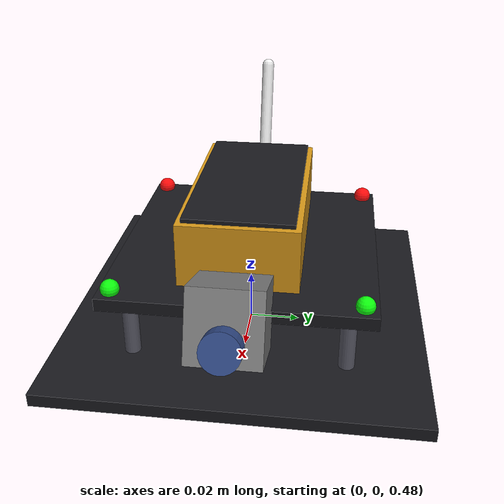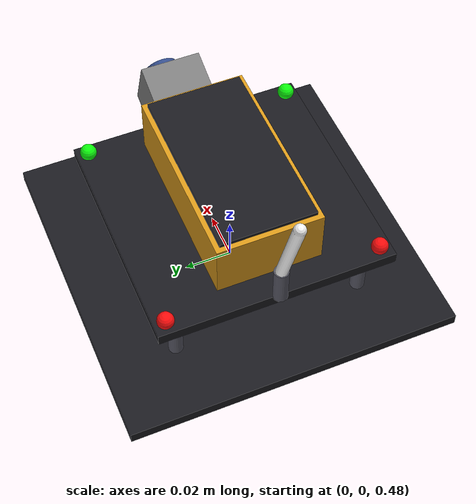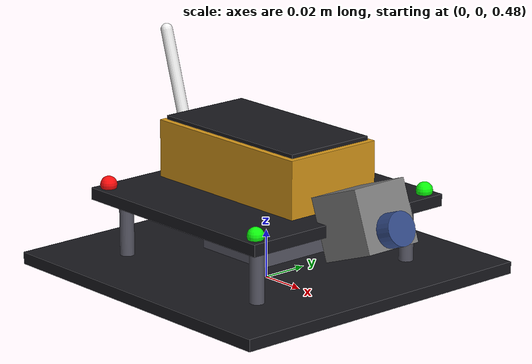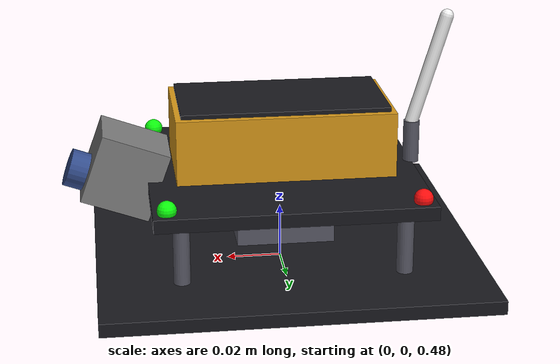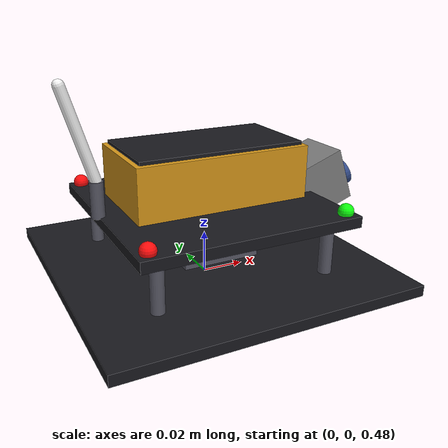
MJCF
<mujoco model='quadcopter'>
    <compiler angle="degree" coordinate="local" autolimits="true"></compiler>
    <option timestep="0.005" gravity="0 0 -9.81"></option>

    <default>
        <!--
        Định nghĩa class visual và collision riêng biệt, kiểm tra collision bằng các
        object đơn giản để hạn chế tính toán
         -->
        <default class="visual">
            <geom contype="0" conaffinity="0" group="2" density="0"/>
        </default>
        <default class="collision">
            <geom group="3" rgba="0.4 0.9 0.4 0.25" friction="0.8 0.02 0.001"/>
        </default>
    </default>

    <asset>
        <texture name="grid" type="2d" builtin="checker" rgb1=".1 .2 .3" rgb2=".2 .3 .4" width="300" height="300"/>
        <material name="mat_grid" texture="grid" texrepeat="8 8" texuniform="true"/>

        <material name="mat_carbon"   rgba="0.10 0.10 0.12 1" specular="0.4" shininess="0.6"/>
        <material name="mat_arm"      rgba="0.13 0.13 0.15 1" specular="0.3"/>
        <material name="mat_motor"    rgba="0.35 0.35 0.40 1" specular="0.6" shininess="0.7"/>
        <material name="mat_bell_cw"  rgba="0.85 0.10 0.10 1" specular="0.5"/>
        <material name="mat_bell_ccw" rgba="0.10 0.30 0.85 1" specular="0.5"/>
        <material name="mat_prop"     rgba="0.05 0.05 0.05 0.9"/>
        <material name="mat_disc"     rgba="0.10 0.10 0.10 0.12"/>
        <material name="mat_battery"  rgba="0.85 0.60 0.10 1"/>
        <material name="mat_camera"   rgba="0.05 0.05 0.05 1"/>
        <material name="mat_lens"     rgba="0.20 0.30 0.55 1" specular="0.9" shininess="0.9"/>
        <material name="mat_led_r"    rgba="1.00 0.05 0.05 1" emission="0.7"/>
        <material name="mat_led_g"    rgba="0.05 1.00 0.05 1" emission="0.7"/>
        <material name="mat_antenna"  rgba="0.95 0.95 0.95 1"/>
    </asset>

    <worldbody>
        <!-- Sàn nhà -->
        <geom name="floor" type="plane" size="0 0 1" material="mat_grid" pos="0 0 0"/>
        <light pos="0 0 3" dir="0 0 -1"/>
        <light pos="2 2 3" dir="-1 -1 -1" diffuse="0.4 0.4 0.4"/>
        <!-- Drone -->
        <body name="drone_core" pos="0 0 0.5"> <!-- Drone ở vị trí (x, y, z) = (0, 0, 0.5) -->
            <freejoint name="root"/>
            <geom class="collision" name="col_chassis" type="box" size="0.07 0.07 0.025" mass="1.0"/>
            <!-- =================================================
            VISUAL (group 2): chi tiết render, không va chạm
            ======================================================-->
            <geom class="visual" name="vis_top_plate" type="box" pos="0 0 0.014" size="0.05 0.05 0.0025" material="mat_carbon"/>
            <geom class="visual" name="vis_bot_plate" type="box" pos="0 0 -0.014" size="0.07 0.07 0.0025" material="mat_carbon"/>
            <geom class="visual" name="vis_so_FL" type="cylinder" pos="0.040 0.040 0" size="0.003 0.014" material="mat_motor"/>
            <geom class="visual" name="vis_so_FR" type="cylinder" pos="0.040 -0.040 0" size="0.003 0.014" material="mat_motor"/>
            <geom class="visual" name="vis_so_BL" type="cylinder" pos="-0.040 0.040 0" size="0.003 0.014" material="mat_motor"/>
            <geom class="visual" name="vis_so_BR" type="cylinder" pos="-0.040 -0.040 0" size="0.003 0.014" material="mat_motor"/>

            <!-- Flight controller ở giữa -->
            <geom class="visual" name="vis_fc" type="box" pos="0 0 0" size="0.018 0.018 0.008" material="mat_motor"/>

            <!-- Pin ở trên đỉnh -->
            <geom class="visual" name="vis_battery" type="box" pos="0 0 0.030" size="0.040 0.022 0.012" material="mat_battery"/>
            <geom class="visual" name="vis_battery_strap" type="box" pos="0 0 0.043" size="0.038 0.020 0.0008" material="mat_carbon"/>

            <geom class="visual" name="vis_cam_body" type="box" pos="0.058 0 0.018" euler="0 -20 0" size="0.013 0.013 0.013"/>
            <geom class="visual" name="vis_cam_lens" type="cylinder" pos="0.075 0 0.018" euler="0 70 0" size="0.007 0.004" material="mat_lens"/>

            <geom class="visual" name="vis_ant_base" type="cylinder" pos="-0.050 0 0.024" size="0.003 0.008" material="mat_motor"/>
            <geom class="visual" name="vis_ant_rod" type="capsule" fromto="-0.050 0 0.032 -0.062 0 0.072" size="0.0025" material="mat_antenna"/>

            <!--
            LEDs định hướng (xanh trước, đỏ sau)
            type="sphere" (hình cầu)
                pos=(x,y,z): tọa độ tâm hình cầu
                size=r: bán kính hình cầu
            -->
            <geom class="visual" name="vis_led_FL" type="sphere" pos="0.045 0.045 0.018" size="0.0035" material="mat_led_g"/>
            <geom class="visual" name="vis_led_FR" type="sphere" pos="0.045 -0.045 0.018" size="0.0035" material="mat_led_g"/>
            <geom class="visual" name="vis_led_BL" type="sphere" pos="-0.045 0.045 0.018" size="0.0035" material="mat_led_r"/>
            <geom class="visual" name="vis_led_BR" type="sphere" pos="-0.045 -0.045 0.018" size="0.0035" material="mat_led_r"/>

            <!-- ==================================
            CÁNH 1: Front-left
            =======================================-->
            <body name="arm_FL" pos="0.012 0.012 0">

            </body>
        </body>

    </worldbody>
</mujoco>
